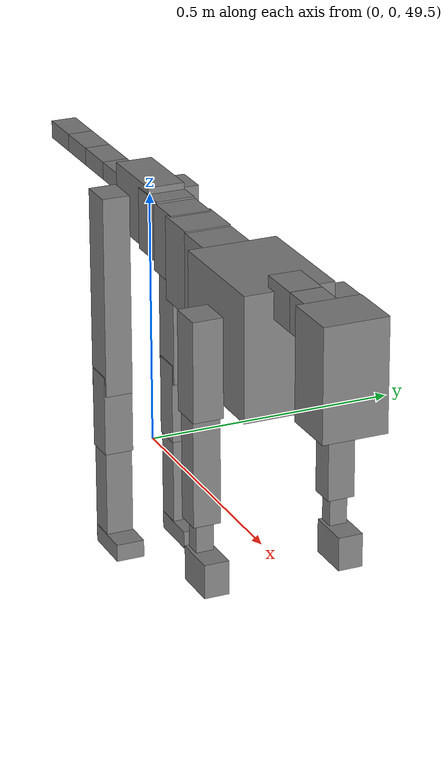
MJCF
<mujoco model="dog">

    <default>
        <joint armature="0.02" stiffness="1" damping="0.2" limited="true"/>
        <geom condim="3" friction="1 0.05 0.05" margin="0.01"/>
        <motor ctrllimited="true" ctrlrange="-1.0 1.0" forcelimited="true" gear="50"/>
    </default>

    <compiler inertiafromgeom="true" angle="radian"/>

    <option timestep="0.016" iterations="50" tolerance="1e-10" solver="Newton" jacobian="dense" cone="pyramidal"/>

    <size nconmax="20000" njmax="60000" nstack="5000000"/>
    <visual>
        <map force="0.1" zfar="30"/>
        <rgba haze="0.15 0.25 0.35 1"/>
        <quality shadowsize="2048"/>
        <global offwidth="800" offheight="800"/>
    </visual>

    <asset>
        <texture type="skybox" builtin="gradient" rgb1="0.3 0.5 0.7" rgb2="0 0 0" width="512" height="512"/>
        <texture name="texplane" type="2d" builtin="checker" rgb1=".2 .3 .4" rgb2=".1 0.15 0.2" width="512" height="512"
                 mark="cross" markrgb=".8 .8 .8"/>
        <texture name="texgeom" type="cube" builtin="flat" mark="cross" width="127" height="1278" rgb1="0.8 0.6 0.4"
                 rgb2="0.8 0.6 0.4" markrgb="1 1 1" random="0.01"/>

        <material name="matplane" reflectance="0.3" texture="texplane" texrepeat="1 1" texuniform="true"/>
        <material name="matgeom" texture="texgeom" texuniform="true" rgba="0.8 0.6 .4 1"/>
    </asset>

    <worldbody>
        <geom name="floor" pos="0 0 0" size="0 0 .25" type="plane" material="matplane" condim="3"/>

        <light directional="false" diffuse=".2 .2 .2" specular="0 0 0" pos="0 0 5" dir="0 0 -1" castshadow="false"/>
        <light mode="targetbodycom" target="torso" directional="false" diffuse=".8 .8 .8" specular="0.3 0.3 0.3"
               pos="0 0 4.0" dir="0 0 -1"/>

        <body name="root" pos="0 0 50">
            <freejoint name="root_1"/>
            <geom type="box" pos="0 0 -0.02" size="0.0774  0.0358  0.063" density="2030"/>

            <body name="spine1" pos="0.054 0 0">
                <joint name="spine1_y" axis="0 1 0" range="0 0.7" limited="true"/>
                <geom type="box" pos="0.02375 0 -0.03" size="0.04375  0.0375  0.05985" density="2030"/>

                <body name="spine2" pos="0.0612 0 0">
                    <joint name="spine2_y" axis="0 1 0" range="-0.15 0.15" limited="true"/>
                    <geom type="box" pos="0.03555  0  -0.04" size="0.04055  0.039  0.06615" density="2030"/>

                    <body name="spine3" pos="0.0730 0 0">
                        <joint name="spine3_y" axis="0 1 0" range="-0.15 0.15" limited="true"/>
                        <geom type="box" pos="0.03555  0  -0.057" size="0.04555  0.0445  0.081" density="2030"/>

                        <body name="spine4" pos="0.0780 0 0">
                            <joint name="spine4_y" axis="0 1 0" range="-0.15 0.15" limited="true"/>
                            <geom type="box" pos="0.05265  0  -0.07" size="0.05265  0.045  0.09135" density="2030"/>

                            <body name="torso" pos="0.1082 0 0">
                                <joint name="torso_y" axis="0 1 0" range="-0.15 0.15" limited="true"/>
                                <geom type="box" pos="0.11925  0  -0.085" size="0.11925  0.085  0.11745"
                                      density="2030"/>

                                <body name="neck1" pos="0.2160  0   0.0180">
                                    <joint name="neck1_y" axis="0 1 0" range="-1.2  -1" limited="true"/>
                                    <geom type="box" pos="0.0423  0  0" size="0.0423  0.03  0.036" density="2325"/>

                                    <body name="neck2" pos="0.0853  0  0">
                                        <joint name="neck2_y" axis="0 1 0" range="0.1  0" limited="true"/>
                                        <geom type="box" pos="0.0423  0  0" size="0.0423  0.03  0.036" density="2325"/>

                                        <body name="head" pos="0.0853  0  0">
                                            <joint name="head_y" axis="0 1 0" range="-0.3  -0.2" limited="true"/>
                                            <geom type="box" pos="0.0531  0  -0.055" size="0.0531  0.06  0.1044"
                                                  density="4030"/>

                                        </body>
                                    </body>
                                </body>

                                <body name="front_shoulder" pos="0.156  0   -0.0480">
                                    <joint name="front_shoulder_y" axis="0 1 0" range="-1 1.5" limited="true"/>
                                    <geom type="box" pos="0 0.13 -0.0671" size="0.0331  0.0283  0.0938" density="1158"/>
                                    <geom type="box" pos="0 -0.13 -0.0671" size="0.0331  0.0283  0.0938"
                                          density="1158"/>

                                    <body name="front_elbow" pos="0  0  -0.1342">
                                        <joint name="front_elbow_y" axis="0 1 0" range="-2 0" limited="true"/>
                                        <geom type="box" pos="0 0.13 -0.1147" size="0.0252  0.0258  0.1147"
                                              density="1081"/>
                                        <geom type="box" pos="0 -0.13 -0.1147" size="0.0252  0.0258  0.1147"
                                              density="1081"/>

                                        <body name="front_wrist" pos="0  0  -0.2294">
                                            <joint name="front_wrist_y" axis="0 1 0" range="-0.2 0" limited="true"/>
                                            <geom type="box" pos="0 0.13 -0.0347" size="0.0152  0.0169  0.0479"
                                                  density="1664"/>
                                            <geom type="box" pos="0 -0.13 -0.0347" size="0.0152  0.0169  0.0479"
                                                  density="1664"/>

                                            <body name="front_finger_end" pos="0  0  -0.0695">
                                                <joint name="front_finger_y" axis="0 1 0" range="-0.4 1"
                                                       limited="true"/>
                                                <geom type="box" pos="0.0234  0.13  -0.0174"
                                                      size="0.0429  0.0234  0.0324" density="1515"/>
                                                <geom type="box" pos="0.0234  -0.13  -0.0174"
                                                      size="0.0429  0.0234  0.0324" density="1515"/>

                                            </body>

                                        </body>
                                    </body>
                                </body>

                            </body>
                        </body>
                    </body>
                </body>
            </body>

            <body name="back_hip" pos="-0.03 0 -0.018">
                <joint name="back_hip_y" axis="0 1 0" range="-1.5 0.3" limited="true"/>
                <geom type="box" pos="0 0.07 -0.1770" size="0.0342  0.0269  0.1998" density="1154"/>
                <geom type="box" pos="0 -0.07 -0.1770" size="0.0342  0.0269  0.1998" density="1154"/>

                <body name="back_knee" pos="0  0  -0.3540">
                    <joint name="back_knee_y" axis="0 1 0" range="0 2.8" limited="true"/>
                    <geom type="box" pos="0 0.07 -0.0650" size="0.0289  0.0285  0.0805" density="1227"/>
                    <geom type="box" pos="0 -0.07 -0.0650" size="0.0289  0.0285  0.0805" density="1227"/>

                    <body name="back_ankle" pos="0  0  -0.1300">
                        <joint name="back_ankle_y" axis="0 1 0" range="-2.2 0" limited="true"/>
                        <geom type="box" pos="0 0.07 -0.1002" size="0.0267  0.0267  0.1114" density="1284"/>
                        <geom type="box" pos="0 -0.07 -0.1002" size="0.0267  0.0267  0.1114" density="1284"/>

                        <body name="back_toe_end" pos="0  0  -0.2004">
                            <joint name="back_toe_y" axis="0 1 0" range="-0.4 1" limited="true"/>
                            <geom type="box" pos="0.0279  0.07  -0.0023" size="0.0512  0.0279  0.0173" density="1515"/>
                            <geom type="box" pos="0.0279  -0.07  -0.0023" size="0.0512  0.0279  0.0173" density="1515"/>

                        </body>
                    </body>
                </body>
            </body>

            <body name="tail1" pos="-0.074 0 -0.006">
                <joint name="tail1_y" axis="0 1 0" range="-0.2 0.2" limited="true"/>
                <geom type="box" pos="-0.0536  0  0" size="0.045  0.025  0.0175" density="1587"/>

                <body name="tail2" pos="-0.09 0 0">
                    <joint name="tail2_y" axis="0 1 0" range="-0.2 0.2" limited="true"/>
                    <geom type="box" pos="-0.0536  0  0" size="0.045  0.025  0.0175" density="1587"/>

                    <body name="tail3" pos="-0.09 0 0">
                        <joint name="tail3_y" axis="0 1 0" range="-0.2 0.2" limited="true"/>
                        <geom type="box" pos="-0.0536  0  0" size="0.045  0.025  0.0175" density="1587"/>

                        <body name="tail4" pos="-0.09 0 0">
                            <joint name="tail4_y" axis="0 1 0" range="-0.2 0.2" limited="true"/>
                            <geom type="box" pos="-0.0536  0  0" size="0.045  0.025  0.0175" density="1587"/>

                        </body>
                    </body>
                </body>
            </body>
        </body>
    </worldbody>

    <actuator>
        <motor joint="spine1_y" forcerange="-150 150     "/>
        <motor joint="spine2_y" forcerange="-150 150     "/>
        <motor joint="spine3_y" forcerange="-150 150     "/>
        <motor joint="spine4_y" forcerange="-150 150     "/>
        <motor joint="torso_y" forcerange="-150 150     "/>
        <motor joint="neck1_y" forcerange="-100 100       "/>
        <motor joint="neck2_y" forcerange="-100 100       "/>
        <motor joint="head_y" forcerange="-150 150       "/>
        <motor joint="front_shoulder_y" forcerange="-174.21 114.16"/>
        <motor joint="front_elbow_y" forcerange="-138.66 148.77"/>
        <motor joint="front_wrist_y" forcerange="-69.95 65.02"/>
        <motor joint="front_finger_y" forcerange="-20.41 64.39"/>
        <motor joint="back_hip_y" forcerange="-261.41 296.73"/>
        <motor joint="back_knee_y" forcerange="-231.20 382.97"/>
        <motor joint="back_angle_y" forcerange="-122.45 205.14"/>
        <motor joint="back_toe_y" forcerange="-37.72 105.80"/>
        <motor joint="tail1_y" forcerange="-50 50     "/>
        <motor joint="tail2_y" forcerange="-50 50     "/>
        <motor joint="tail3_y" forcerange="-50 50     "/>
        <motor joint="tail4_y" forcerange="-50 50     "/>
    </actuator>
</mujoco>
